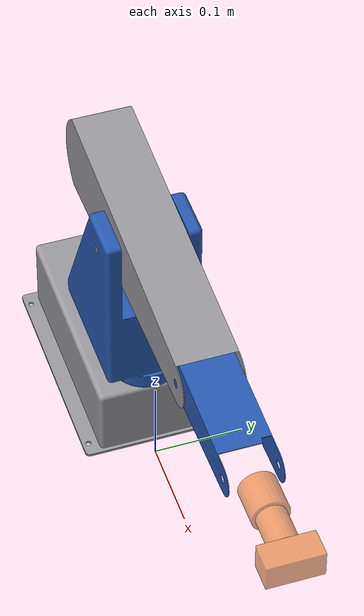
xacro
<?xml version="1.0"?>
<robot xmlns:xacro="http://www.ros.org/wiki/xacro" name="rob3">

  <xacro:property name="deg" value="0.017453292519943295"/>

  <material name="rob3_grey"><color rgba="0.6 0.6 0.62 1"/></material>
  <material name="rob3_blue"><color rgba="0.15 0.35 0.7 1"/></material>
  <!-- translucent orange flags the CAD-missing stand-in links -->
  <material name="rob3_standin"><color rgba="0.9 0.45 0.1 0.6"/></material>

  <!-- CAD mesh link: visual+collision share one STL at a given origin. -->
  <xacro:macro name="cad_link" params="name mesh ox oy oz material mass">
    <link name="${name}">
      <visual>
        <origin xyz="${ox} ${oy} ${oz}" rpy="0 0 0"/>
        <geometry><mesh filename="meshes/${mesh}" scale="0.001 0.001 0.001"/></geometry>
        <material name="${material}"/>
      </visual>
      <collision>
        <origin xyz="${ox} ${oy} ${oz}" rpy="0 0 0"/>
        <geometry><mesh filename="meshes/${mesh}" scale="0.001 0.001 0.001"/></geometry>
      </collision>
      <inertial>
        <mass value="${mass}"/>
        <inertia ixx="1e-3" ixy="0" ixz="0" iyy="1e-3" iyz="0" izz="1e-3"/>
      </inertial>
    </link>
  </xacro:macro>

  <!-- CAD-missing stand-in (primitive cylinder, oriented along local +X). -->
  <xacro:macro name="standin_cyl" params="name length radius mass">
    <link name="${name}">
      <visual>
        <origin xyz="${length/2} 0 0" rpy="0 ${pi/2} 0"/>
        <geometry><cylinder length="${length}" radius="${radius}"/></geometry>
        <material name="rob3_standin"/>
      </visual>
      <collision>
        <origin xyz="${length/2} 0 0" rpy="0 ${pi/2} 0"/>
        <geometry><cylinder length="${length}" radius="${radius}"/></geometry>
      </collision>
      <inertial>
        <mass value="${mass}"/>
        <inertia ixx="1e-4" ixy="0" ixz="0" iyy="1e-4" iyz="0" izz="1e-4"/>
      </inertial>
    </link>
  </xacro:macro>

  <!-- ============ CAD links (source of truth) ============ -->
  <xacro:cad_link name="base_link" mesh="base_link.stl" ox="0"      oy="0"     oz="0"    material="rob3_grey" mass="20.36"/>
  <xacro:cad_link name="link1"     mesh="tower.stl"     ox="0.035"  oy="0"     oz="-0.1" material="rob3_blue" mass="2.5676"/>
  <xacro:cad_link name="link2"     mesh="upperarm.stl"  ox="0.035"  oy="0.052" oz="-0.3" material="rob3_grey" mass="0.8917"/>
  <xacro:cad_link name="link3"     mesh="forearm.stl"   ox="-0.165" oy="0.033" oz="-0.3" material="rob3_blue" mass="0.2256"/>

  <!-- ============ CAD-MISSING stand-ins [INFER] ============ -->
  <xacro:standin_cyl name="link4" length="0.04" radius="0.02"  mass="0.1"/>
  <xacro:standin_cyl name="link5" length="0.04" radius="0.016" mass="0.08"/>
  <link name="gripper_link">
    <visual>
      <origin xyz="0.015 0 0" rpy="0 0 0"/>
      <geometry><box size="0.03 0.06 0.03"/></geometry>
      <material name="rob3_standin"/>
    </visual>
    <collision>
      <origin xyz="0.015 0 0" rpy="0 0 0"/>
      <geometry><box size="0.03 0.06 0.03"/></geometry>
    </collision>
    <inertial>
      <mass value="0.05"/>
      <inertia ixx="1e-4" ixy="0" ixz="0" iyy="1e-4" iyz="0" izz="1e-4"/>
    </inertial>
  </link>

  <!-- ============ Joints ============ -->

  <!-- Axis 0: base rotation (q1) +80..-80 deg  [CAD "Umdrehung 14", axis Z] -->
  <joint name="base" type="revolute">
    <parent link="base_link"/><child link="link1"/>
    <origin xyz="-0.035 0 0.1" rpy="0 0 0"/><axis xyz="0 0 1"/>
    <limit lower="${-80*deg}" upper="${80*deg}" effort="10" velocity="1.0"/>
  </joint>

  <!-- Axis 1: shoulder (q2) +70..-30 deg  [CAD "Gelenk 2", axis Y] -->
  <joint name="shoulder" type="revolute">
    <parent link="link1"/><child link="link2"/>
    <origin xyz="0 -0.052 0.2" rpy="0 0 0"/><axis xyz="0 1 0"/>
    <limit lower="${-30*deg}" upper="${70*deg}" effort="10" velocity="1.0"/>
  </joint>

  <!-- Axis 2: elbow (q3) 0..-100 deg  [CAD "Gelenk 3", axis Y] -->
  <joint name="elbow" type="revolute">
    <parent link="link2"/><child link="link3"/>
    <origin xyz="0.2 0.019 0" rpy="0 0 0"/><axis xyz="0 1 0"/>
    <limit lower="${-100*deg}" upper="0" effort="8" velocity="1.0"/>
  </joint>

  <!-- Axis 3: wrist pitch (q4) +/-100 deg  [STAND-IN: not in CAD].
       Attached at the forearm tip (link3 frame x~=0.148, y~=0.033). -->
  <joint name="wrist_pitch" type="revolute">
    <parent link="link3"/><child link="link4"/>
    <origin xyz="0.148 0.033 0" rpy="0 0 0"/><axis xyz="0 1 0"/>
    <limit lower="${-100*deg}" upper="${100*deg}" effort="5" velocity="1.5"/>
  </joint>

  <!-- Axis 4: wrist roll (q5) +/-100 deg  [STAND-IN: not in CAD] -->
  <joint name="wrist_roll" type="revolute">
    <parent link="link4"/><child link="link5"/>
    <origin xyz="0.04 0 0" rpy="0 0 0"/><axis xyz="1 0 0"/>
    <limit lower="${-100*deg}" upper="${100*deg}" effort="5" velocity="1.5"/>
  </joint>

  <!-- Axis 5: gripper linear opening 0..60 mm (prismatic)  [STAND-IN: not in CAD] -->
  <joint name="gripper" type="prismatic">
    <parent link="link5"/><child link="gripper_link"/>
    <origin xyz="0.04 0 0" rpy="0 0 0"/><axis xyz="0 1 0"/>
    <limit lower="0.0" upper="0.060" effort="20" velocity="0.05"/>
  </joint>

</robot>
